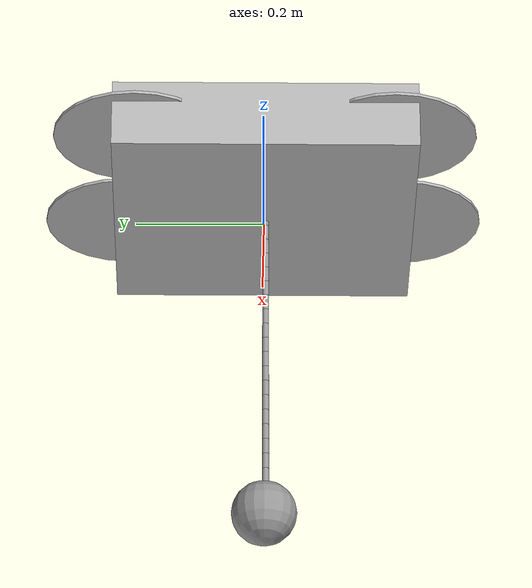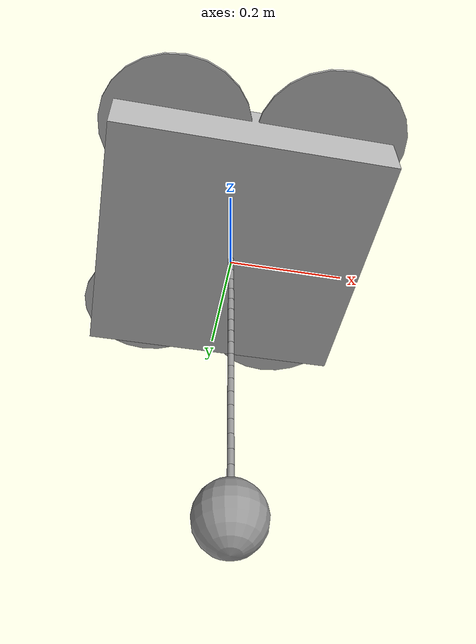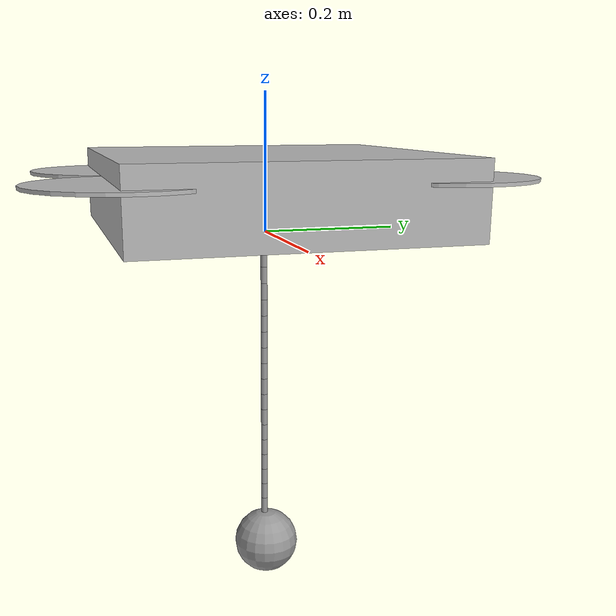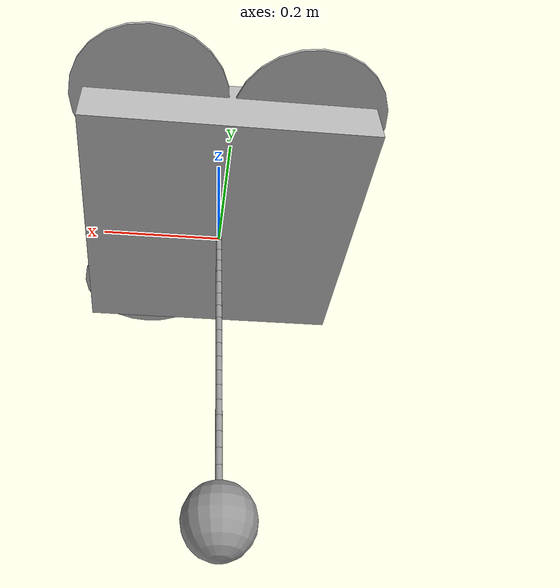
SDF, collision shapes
<?xml version="1.0" ?>
<sdf version='1.5'>
  <model name='iris_load_test'>
    <include>
      <uri>model://iris</uri>
      <pose> 0 0 0.06 0 0 0 </pose>
    </include>
    <include>
      <uri>model://cable</uri>
      <pose> 0 0 0.06 -1.5707 0 0 </pose>
    </include>
    <include>
      <uri>model://payload</uri>
      <pose> 0 0 -0.5025 0 0 0 </pose>
    </include>
    <joint name="iris_cable_joint" type="revolute">
        <child>iris::base_link</child>
        <parent>cable::link_1</parent>
        <pose> 0 0 0 0 0 0 </pose>
        <axis>
        <xyz>1 0 0</xyz>
        <limit>
          <lower>-1.79769e+308</lower>
          <upper>1.79769e+308</upper>
          <effort>-1</effort>
          <velocity>-1</velocity>
        </limit>
        <dynamics>
          <spring_reference>0</spring_reference>
          <spring_stiffness>0</spring_stiffness>
          <damping>0.5</damping>
        </dynamics>
      </axis>
      <physics>
        <ode>
          <implicit_spring_damper>1</implicit_spring_damper>
          <limit>
            <cfm>0</cfm>
            <erp>0.2</erp> <!-- changing to higher seems to improve realism-->
          </limit>
          <suspension>
            <cfm>0</cfm>
            <erp>0.2</erp>
          </suspension>
        </ode>
      </physics>
    </joint>
    <joint name='cable_payload_joint' type='revolute'>
      <parent>cable::link_20</parent>
      <child>payload::payload_link</child>
      <pose>0 0 0.05 0 -0 0</pose>
      <axis>
        <xyz>1 0 0</xyz>
        <limit>
          <lower>-1.79769e+308</lower>
          <upper>1.79769e+308</upper>
          <effort>-1</effort>
          <velocity>-1</velocity>
        </limit>
        <dynamics>
          <spring_reference>0</spring_reference>
          <spring_stiffness>0</spring_stiffness>
          <damping>0.5</damping>
        </dynamics>
      </axis>
      <physics>
        <ode>
          <implicit_spring_damper>1</implicit_spring_damper>
          <limit>
            <cfm>0</cfm>
            <erp>0.2</erp>
          </limit>
          <suspension>
            <cfm>0</cfm>
            <erp>0.2</erp>
          </suspension>
        </ode>
      </physics>
    </joint>
  </model>
</sdf>

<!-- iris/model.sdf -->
<!-- DO NOT EDIT: Generated from iris.sdf.jinja -->
<sdf version='1.6'>
  <model name='iris'>
    <link name='base_link'>
      <pose>0 0 0 0 0 0</pose>
      <inertial>
        <pose>0 0 0 0 0 0</pose>
        <mass>1.5</mass>
        <inertia>
          <ixx>0.029125</ixx>
          <ixy>0</ixy>
          <ixz>0</ixz>
          <iyy>0.029125</iyy>
          <iyz>0</iyz>
          <izz>0.055225</izz>
        </inertia>
      </inertial>
      <collision name='base_link_inertia_collision'>
        <pose>0 0 0 0 0 0</pose>
        <geometry>
          <box>
            <size>0.47 0.47 0.11</size>
          </box>
        </geometry>
        <surface>
          <contact>
            <ode>
              <min_depth>0.001</min_depth>
              <max_vel>0</max_vel>
            </ode>
          </contact>
          <friction>
            <ode/>
          </friction>
        </surface>
      </collision>
      <visual name='base_link_inertia_visual'>
        <pose>0 0 0 0 0 0</pose>
        <geometry>
          <mesh>
            <scale>1 1 1</scale>
            <uri>model://iris/meshes/iris.stl</uri>
          </mesh>
        </geometry>
      </visual>
      <gravity>1</gravity>
      <velocity_decay/>
    </link>
    <link name='/imu_link'>
      <pose>0 0 0 0 0 0</pose>
      <inertial>
        <pose>0 0 0 0 0 0</pose>
        <mass>0.015</mass>
        <inertia>
          <ixx>1e-05</ixx>
          <ixy>0</ixy>
          <ixz>0</ixz>
          <iyy>1e-05</iyy>
          <iyz>0</iyz>
          <izz>1e-05</izz>
        </inertia>
      </inertial>
    </link>
    <joint name='/imu_joint' type='revolute'>
      <child>/imu_link</child>
      <parent>base_link</parent>
      <axis>
        <xyz>1 0 0</xyz>
        <limit>
          <lower>0</lower>
          <upper>0</upper>
          <effort>0</effort>
          <velocity>0</velocity>
        </limit>
        <dynamics>
          <spring_reference>0</spring_reference>
          <spring_stiffness>0</spring_stiffness>
        </dynamics>
        <use_parent_model_frame>1</use_parent_model_frame>
      </axis>
    </joint>
    <link name='rotor_0'>
      <pose>0.13 -0.22 0.023 0 0 0</pose>
      <inertial>
        <pose>0 0 0 0 0 0</pose>
        <mass>0.005</mass>
        <inertia>
          <ixx>9.75e-07</ixx>
          <ixy>0</ixy>
          <ixz>0</ixz>
          <iyy>0.000273104</iyy>
          <iyz>0</iyz>
          <izz>0.000274004</izz>
        </inertia>
      </inertial>
      <collision name='rotor_0_collision'>
        <pose>0 0 0 0 0 0</pose>
        <geometry>
          <cylinder>
            <length>0.005</length>
            <radius>0.128</radius>
          </cylinder>
        </geometry>
        <surface>
          <contact>
            <ode/>
          </contact>
          <friction>
            <ode/>
          </friction>
        </surface>
      </collision>
      <visual name='rotor_0_visual'>
        <pose>0 0 0 0 0 0</pose>
        <geometry>
          <mesh>
            <scale>1 1 1</scale>
            <uri>model://iris/meshes/iris_prop_ccw.dae</uri>
          </mesh>
        </geometry>
      </visual>
      <gravity>1</gravity>
      <velocity_decay/>
    </link>
    <joint name='rotor_0_joint' type='revolute'>
      <child>rotor_0</child>
      <parent>base_link</parent>
      <axis>
        <xyz>0 0 1</xyz>
        <limit>
          <lower>-1e+16</lower>
          <upper>1e+16</upper>
        </limit>
        <dynamics>
          <spring_reference>0</spring_reference>
          <spring_stiffness>0</spring_stiffness>
        </dynamics>
        <use_parent_model_frame>1</use_parent_model_frame>
      </axis>
    </joint>
    <link name='rotor_1'>
      <pose>-0.13 0.2 0.023 0 0 0</pose>
      <inertial>
        <pose>0 0 0 0 0 0</pose>
        <mass>0.005</mass>
        <inertia>
          <ixx>9.75e-07</ixx>
          <ixy>0</ixy>
          <ixz>0</ixz>
          <iyy>0.000273104</iyy>
          <iyz>0</iyz>
          <izz>0.000274004</izz>
        </inertia>
      </inertial>
      <collision name='rotor_1_collision'>
        <pose>0 0 0 0 0 0</pose>
        <geometry>
          <cylinder>
            <length>0.005</length>
            <radius>0.128</radius>
          </cylinder>
        </geometry>
        <surface>
          <contact>
            <ode/>
          </contact>
          <friction>
            <ode/>
          </friction>
        </surface>
      </collision>
      <visual name='rotor_1_visual'>
        <pose>0 0 0 0 0 0</pose>
        <geometry>
          <mesh>
            <scale>1 1 1</scale>
            <uri>model://iris/meshes/iris_prop_ccw.dae</uri>
          </mesh>
        </geometry>
      </visual>
      <gravity>1</gravity>
      <velocity_decay/>
    </link>
    <joint name='rotor_1_joint' type='revolute'>
      <child>rotor_1</child>
      <parent>base_link</parent>
      <axis>
        <xyz>0 0 1</xyz>
        <limit>
          <lower>-1e+16</lower>
          <upper>1e+16</upper>
        </limit>
        <dynamics>
          <spring_reference>0</spring_reference>
          <spring_stiffness>0</spring_stiffness>
        </dynamics>
        <use_parent_model_frame>1</use_parent_model_frame>
      </axis>
    </joint>
    <link name='rotor_2'>
      <pose>0.13 0.22 0.023 0 0 0</pose>
      <inertial>
        <pose>0 0 0 0 0 0</pose>
        <mass>0.005</mass>
        <inertia>
          <ixx>9.75e-07</ixx>
          <ixy>0</ixy>
          <ixz>0</ixz>
          <iyy>0.000273104</iyy>
          <iyz>0</iyz>
          <izz>0.000274004</izz>
        </inertia>
      </inertial>
      <collision name='rotor_2_collision'>
        <pose>0 0 0 0 0 0</pose>
        <geometry>
          <cylinder>
            <length>0.005</length>
            <radius>0.128</radius>
          </cylinder>
        </geometry>
        <surface>
          <contact>
            <ode/>
          </contact>
          <friction>
            <ode/>
          </friction>
        </surface>
      </collision>
      <visual name='rotor_2_visual'>
        <pose>0 0 0 0 0 0</pose>
        <geometry>
          <mesh>
            <scale>1 1 1</scale>
            <uri>model://iris/meshes/iris_prop_cw.dae</uri>
          </mesh>
        </geometry>
      </visual>
      <gravity>1</gravity>
      <velocity_decay/>
    </link>
    <joint name='rotor_2_joint' type='revolute'>
      <child>rotor_2</child>
      <parent>base_link</parent>
      <axis>
        <xyz>0 0 1</xyz>
        <limit>
          <lower>-1e+16</lower>
          <upper>1e+16</upper>
        </limit>
        <dynamics>
          <spring_reference>0</spring_reference>
          <spring_stiffness>0</spring_stiffness>
        </dynamics>
        <use_parent_model_frame>1</use_parent_model_frame>
      </axis>
    </joint>
    <link name='rotor_3'>
      <pose>-0.13 -0.2 0.023 0 0 0</pose>
      <inertial>
        <pose>0 0 0 0 0 0</pose>
        <mass>0.005</mass>
        <inertia>
          <ixx>9.75e-07</ixx>
          <ixy>0</ixy>
          <ixz>0</ixz>
          <iyy>0.000273104</iyy>
          <iyz>0</iyz>
          <izz>0.000274004</izz>
        </inertia>
      </inertial>
      <collision name='rotor_3_collision'>
        <pose>0 0 0 0 0 0</pose>
        <geometry>
          <cylinder>
            <length>0.005</length>
            <radius>0.128</radius>
          </cylinder>
        </geometry>
        <surface>
          <contact>
            <ode/>
          </contact>
          <friction>
            <ode/>
          </friction>
        </surface>
      </collision>
      <visual name='rotor_3_visual'>
        <pose>0 0 0 0 0 0</pose>
        <geometry>
          <mesh>
            <scale>1 1 1</scale>
            <uri>model://iris/meshes/iris_prop_cw.dae</uri>
          </mesh>
        </geometry>
      </visual>
      <gravity>1</gravity>
      <velocity_decay/>
    </link>
    <joint name='rotor_3_joint' type='revolute'>
      <child>rotor_3</child>
      <parent>base_link</parent>
      <axis>
        <xyz>0 0 1</xyz>
        <limit>
          <lower>-1e+16</lower>
          <upper>1e+16</upper>
        </limit>
        <dynamics>
          <spring_reference>0</spring_reference>
          <spring_stiffness>0</spring_stiffness>
        </dynamics>
        <use_parent_model_frame>1</use_parent_model_frame>
      </axis>
    </joint>
    <plugin name='rosbag' filename='libgazebo_multirotor_base_plugin.so'>
      <robotNamespace/>
      <linkName>base_link</linkName>
      <rotorVelocitySlowdownSim>10</rotorVelocitySlowdownSim>
    </plugin>
    <plugin name='front_right_motor_model' filename='libgazebo_motor_model.so'>
      <robotNamespace/>
      <jointName>rotor_0_joint</jointName>
      <linkName>rotor_0</linkName>
      <turningDirection>ccw</turningDirection>
      <timeConstantUp>0.0125</timeConstantUp>
      <timeConstantDown>0.025</timeConstantDown>
      <maxRotVelocity>1100</maxRotVelocity>
      <motorConstant>5.84e-06</motorConstant>
      <momentConstant>0.06</momentConstant>
      <commandSubTopic>/gazebo/command/motor_speed</commandSubTopic>
      <motorNumber>0</motorNumber>
      <rotorDragCoefficient>0.000175</rotorDragCoefficient>
      <rollingMomentCoefficient>1e-06</rollingMomentCoefficient>
      <motorSpeedPubTopic>/motor_speed/0</motorSpeedPubTopic>
      <rotorVelocitySlowdownSim>10</rotorVelocitySlowdownSim>
    </plugin>
    <plugin name='back_left_motor_model' filename='libgazebo_motor_model.so'>
      <robotNamespace/>
      <jointName>rotor_1_joint</jointName>
      <linkName>rotor_1</linkName>
      <turningDirection>ccw</turningDirection>
      <timeConstantUp>0.0125</timeConstantUp>
      <timeConstantDown>0.025</timeConstantDown>
      <maxRotVelocity>1100</maxRotVelocity>
      <motorConstant>5.84e-06</motorConstant>
      <momentConstant>0.06</momentConstant>
      <commandSubTopic>/gazebo/command/motor_speed</commandSubTopic>
      <motorNumber>1</motorNumber>
      <rotorDragCoefficient>0.000175</rotorDragCoefficient>
      <rollingMomentCoefficient>1e-06</rollingMomentCoefficient>
      <motorSpeedPubTopic>/motor_speed/1</motorSpeedPubTopic>
      <rotorVelocitySlowdownSim>10</rotorVelocitySlowdownSim>
    </plugin>
    <plugin name='front_left_motor_model' filename='libgazebo_motor_model.so'>
      <robotNamespace/>
      <jointName>rotor_2_joint</jointName>
      <linkName>rotor_2</linkName>
      <turningDirection>cw</turningDirection>
      <timeConstantUp>0.0125</timeConstantUp>
      <timeConstantDown>0.025</timeConstantDown>
      <maxRotVelocity>1100</maxRotVelocity>
      <motorConstant>5.84e-06</motorConstant>
      <momentConstant>0.06</momentConstant>
      <commandSubTopic>/gazebo/command/motor_speed</commandSubTopic>
      <motorNumber>2</motorNumber>
      <rotorDragCoefficient>0.000175</rotorDragCoefficient>
      <rollingMomentCoefficient>1e-06</rollingMomentCoefficient>
      <motorSpeedPubTopic>/motor_speed/2</motorSpeedPubTopic>
      <rotorVelocitySlowdownSim>10</rotorVelocitySlowdownSim>
    </plugin>
    <plugin name='back_right_motor_model' filename='libgazebo_motor_model.so'>
      <robotNamespace/>
      <jointName>rotor_3_joint</jointName>
      <linkName>rotor_3</linkName>
      <turningDirection>cw</turningDirection>
      <timeConstantUp>0.0125</timeConstantUp>
      <timeConstantDown>0.025</timeConstantDown>
      <maxRotVelocity>1100</maxRotVelocity>
      <motorConstant>5.84e-06</motorConstant>
      <momentConstant>0.06</momentConstant>
      <commandSubTopic>/gazebo/command/motor_speed</commandSubTopic>
      <motorNumber>3</motorNumber>
      <rotorDragCoefficient>0.000175</rotorDragCoefficient>
      <rollingMomentCoefficient>1e-06</rollingMomentCoefficient>
      <motorSpeedPubTopic>/motor_speed/3</motorSpeedPubTopic>
      <rotorVelocitySlowdownSim>10</rotorVelocitySlowdownSim>
    </plugin>
    <model name='gps0'>
      <link name='link'>
        <pose>0 0 0 0 0 0</pose>
        <inertial>
          <pose>0 0 0 0 0 0</pose>
          <mass>0.01</mass>
          <inertia>
            <ixx>2.1733e-06</ixx>
            <ixy>0</ixy>
            <ixz>0</ixz>
            <iyy>2.1733e-06</iyy>
            <iyz>0</iyz>
            <izz>1.8e-07</izz>
          </inertia>
        </inertial>
        <visual name='visual'>
          <geometry>
            <cylinder>
              <radius>0.01</radius>
              <length>0.002</length>
            </cylinder>
          </geometry>
        </visual>
        <sensor name='gps' type='gps'>
          <pose>0 0 0 0 0 0</pose>
          <plugin name='gps_plugin' filename='libgazebo_gps_plugin.so'>
            <robotNamespace/>
            <gpsNoise>1</gpsNoise>
            <gpsXYRandomWalk>2.0</gpsXYRandomWalk>
            <gpsZRandomWalk>4.0</gpsZRandomWalk>
            <gpsXYNoiseDensity>0.0002</gpsXYNoiseDensity>
            <gpsZNoiseDensity>0.0004</gpsZNoiseDensity>
            <gpsVXYNoiseDensity>0.2</gpsVXYNoiseDensity>
            <gpsVZNoiseDensity>0.4</gpsVZNoiseDensity>
          </plugin>
        </sensor>
      </link>
    </model>
    <joint name='gps0_joint' type='fixed'>
      <parent>base_link</parent>
      <child>gps0::link</child>
    </joint>
    <plugin name='groundtruth_plugin' filename='libgazebo_groundtruth_plugin.so'>
      <robotNamespace/>
    </plugin>
    <plugin name='magnetometer_plugin' filename='libgazebo_magnetometer_plugin.so'>
      <robotNamespace/>
      <pubRate>100</pubRate>
      <noiseDensity>0.0004</noiseDensity>
      <randomWalk>6.4e-06</randomWalk>
      <biasCorrelationTime>600</biasCorrelationTime>
      <magTopic>/mag</magTopic>
    </plugin>
    <plugin name='barometer_plugin' filename='libgazebo_barometer_plugin.so'>
      <robotNamespace/>
      <pubRate>50</pubRate>
      <baroTopic>/baro</baroTopic>
      <baroDriftPaPerSec>0</baroDriftPaPerSec>
    </plugin>
    <plugin name='mavlink_interface' filename='libgazebo_mavlink_interface.so'>
      <robotNamespace/>
      <imuSubTopic>/imu</imuSubTopic>
      <magSubTopic>/mag</magSubTopic>
      <baroSubTopic>/baro</baroSubTopic>
      <mavlink_addr>INADDR_ANY</mavlink_addr>
      <mavlink_tcp_port>{{ mavlink_tcp_port }}</mavlink_tcp_port>
      <mavlink_udp_port>{{ mavlink_udp_port }}</mavlink_udp_port>
      <serialEnabled>{{ serial_enabled }}</serialEnabled>
      <serialDevice>{{ serial_device }}</serialDevice>
      <baudRate>{{ serial_baudrate }}</baudRate>
      <qgc_addr>INADDR_ANY</qgc_addr>
      <qgc_udp_port>14550</qgc_udp_port>
      <sdk_addr>INADDR_ANY</sdk_addr>
      <sdk_udp_port>14540</sdk_udp_port>
      <hil_mode>{{ hil_mode }}</hil_mode>
      <hil_state_level>0</hil_state_level>
      <send_vision_estimation>0</send_vision_estimation>
      <send_odometry>1</send_odometry>
      <enable_lockstep>1</enable_lockstep>
      <use_tcp>1</use_tcp>
      <motorSpeedCommandPubTopic>/gazebo/command/motor_speed</motorSpeedCommandPubTopic>
      <control_channels>
        <channel name='rotor1'>
          <input_index>0</input_index>
          <input_offset>0</input_offset>
          <input_scaling>1000</input_scaling>
          <zero_position_disarmed>0</zero_position_disarmed>
          <zero_position_armed>100</zero_position_armed>
          <joint_control_type>velocity</joint_control_type>
        </channel>
        <channel name='rotor2'>
          <input_index>1</input_index>
          <input_offset>0</input_offset>
          <input_scaling>1000</input_scaling>
          <zero_position_disarmed>0</zero_position_disarmed>
          <zero_position_armed>100</zero_position_armed>
          <joint_control_type>velocity</joint_control_type>
        </channel>
        <channel name='rotor3'>
          <input_index>2</input_index>
          <input_offset>0</input_offset>
          <input_scaling>1000</input_scaling>
          <zero_position_disarmed>0</zero_position_disarmed>
          <zero_position_armed>100</zero_position_armed>
          <joint_control_type>velocity</joint_control_type>
        </channel>
        <channel name='rotor4'>
          <input_index>3</input_index>
          <input_offset>0</input_offset>
          <input_scaling>1000</input_scaling>
          <zero_position_disarmed>0</zero_position_disarmed>
          <zero_position_armed>100</zero_position_armed>
          <joint_control_type>velocity</joint_control_type>
        </channel>
        <channel name='rotor5'>
          <input_index>4</input_index>
          <input_offset>1</input_offset>
          <input_scaling>324.6</input_scaling>
          <zero_position_disarmed>0</zero_position_disarmed>
          <zero_position_armed>0</zero_position_armed>
          <joint_control_type>velocity</joint_control_type>
          <joint_control_pid>
            <p>0.1</p>
            <i>0</i>
            <d>0</d>
            <iMax>0.0</iMax>
            <iMin>0.0</iMin>
            <cmdMax>2</cmdMax>
            <cmdMin>-2</cmdMin>
          </joint_control_pid>
          <joint_name>zephyr_delta_wing::propeller_joint</joint_name>
        </channel>
        <channel name='rotor6'>
          <input_index>5</input_index>
          <input_offset>0</input_offset>
          <input_scaling>0.524</input_scaling>
          <zero_position_disarmed>0</zero_position_disarmed>
          <zero_position_armed>0</zero_position_armed>
          <joint_control_type>position</joint_control_type>
          <joint_name>zephyr_delta_wing::flap_left_joint</joint_name>
          <joint_control_pid>
            <p>10.0</p>
            <i>0</i>
            <d>0</d>
            <iMax>0</iMax>
            <iMin>0</iMin>
            <cmdMax>20</cmdMax>
            <cmdMin>-20</cmdMin>
          </joint_control_pid>
        </channel>
        <channel name='rotor7'>
          <input_index>6</input_index>
          <input_offset>0</input_offset>
          <input_scaling>0.524</input_scaling>
          <zero_position_disarmed>0</zero_position_disarmed>
          <zero_position_armed>0</zero_position_armed>
          <joint_control_type>position</joint_control_type>
          <joint_name>zephyr_delta_wing::flap_right_joint</joint_name>
          <joint_control_pid>
            <p>10.0</p>
            <i>0</i>
            <d>0</d>
            <iMax>0</iMax>
            <iMin>0</iMin>
            <cmdMax>20</cmdMax>
            <cmdMin>-20</cmdMin>
          </joint_control_pid>
        </channel>
        <channel name='rotor8'>
          <input_index>7</input_index>
          <input_offset>0</input_offset>
          <input_scaling>0.524</input_scaling>
          <zero_position_disarmed>0</zero_position_disarmed>
          <zero_position_armed>0</zero_position_armed>
          <joint_control_type>position</joint_control_type>
        </channel>
      </control_channels>
    </plugin>
    <static>0</static>
    <plugin name='rotors_gazebo_imu_plugin' filename='libgazebo_imu_plugin.so'>
      <robotNamespace/>
      <linkName>/imu_link</linkName>
      <imuTopic>/imu</imuTopic>
      <gyroscopeNoiseDensity>0.00018665</gyroscopeNoiseDensity>
      <gyroscopeRandomWalk>3.8785e-05</gyroscopeRandomWalk>
      <gyroscopeBiasCorrelationTime>1000.0</gyroscopeBiasCorrelationTime>
      <gyroscopeTurnOnBiasSigma>0.0087</gyroscopeTurnOnBiasSigma>
      <accelerometerNoiseDensity>0.00186</accelerometerNoiseDensity>
      <accelerometerRandomWalk>0.006</accelerometerRandomWalk>
      <accelerometerBiasCorrelationTime>300.0</accelerometerBiasCorrelationTime>
      <accelerometerTurnOnBiasSigma>0.196</accelerometerTurnOnBiasSigma>
    </plugin>
  </model>
</sdf>

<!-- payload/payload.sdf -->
<sdf version='1.7'>
  <model name='payload'>
    <link name='payload_link'>
      <inertial>
        <mass>0.5</mass>
        <inertia>
          <ixx>0.0005</ixx>
          <ixy>0</ixy>
          <ixz>0</ixz>
          <iyy>0.0005</iyy>
          <iyz>0</iyz>
          <izz>0.0005</izz>
        </inertia>
        <pose>0 0 0 0 0 0</pose>
      </inertial>
      <self_collide>0</self_collide>
      <enable_wind>0</enable_wind>
      <kinematic>0</kinematic>
      <pose>0 0 0 0 0 0</pose>
      <gravity>1</gravity>
      <visual name='visual'>
        <geometry>
          <sphere>
            <radius>0.05</radius>
          </sphere>
        </geometry>
        <material>
          <script>
            <name>Gazebo/Grey</name>
            <uri>file://media/materials/scripts/gazebo.material</uri>
          </script>
          <shader type='pixel'>
            <normal_map>__default__</normal_map>
          </shader>
          <ambient>0.3 0.3 0.3 1</ambient>
          <diffuse>0.7 0.7 0.7 1</diffuse>
          <specular>0.01 0.01 0.01 1</specular>
          <emissive>0 0 0 1</emissive>
        </material>
        <pose>0 0 0 0 -0 0</pose>
        <transparency>0</transparency>
        <cast_shadows>1</cast_shadows>
      </visual>
      <collision name='collision'>
        <laser_retro>0</laser_retro>
        <max_contacts>10</max_contacts>
        <pose>0 0 0 0 -0 0</pose>
        <geometry>
          <sphere>
            <radius>0.05</radius>
          </sphere>
        </geometry>
        <surface>
          <friction>
            <ode>
              <mu>1</mu>
              <mu2>1</mu2>
              <fdir1>0 0 0</fdir1>
              <slip1>0</slip1>
              <slip2>0</slip2>
            </ode>
            <torsional>
              <coefficient>1</coefficient>
              <patch_radius>0</patch_radius>
              <surface_radius>0</surface_radius>
              <use_patch_radius>1</use_patch_radius>
              <ode>
                <slip>0</slip>
              </ode>
            </torsional>
          </friction>
          <bounce>
            <restitution_coefficient>0</restitution_coefficient>
            <threshold>1e+06</threshold>
          </bounce>
          <contact>
            <collide_bitmask>0x0</collide_bitmask>
            <ode>
              <soft_cfm>0</soft_cfm>
              <soft_erp>0.2</soft_erp>
              <kp>1e+13</kp>
              <kd>1</kd>
              <max_vel>0.01</max_vel>
              <min_depth>0</min_depth>
            </ode>
            <bullet>
              <split_impulse>1</split_impulse>
              <split_impulse_penetration_threshold>-0.01</split_impulse_penetration_threshold>
              <soft_cfm>0</soft_cfm>
              <soft_erp>0.2</soft_erp>
              <kp>1e+13</kp>
              <kd>1</kd>
            </bullet>
          </contact>
        </surface>
      </collision>
    </link>
    <static>0</static>
    <allow_auto_disable>1</allow_auto_disable>
  </model>
</sdf>
